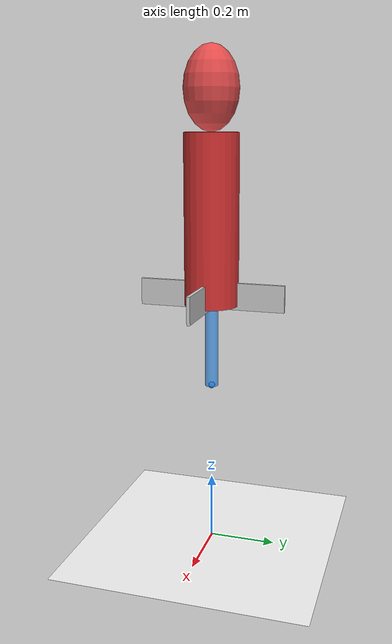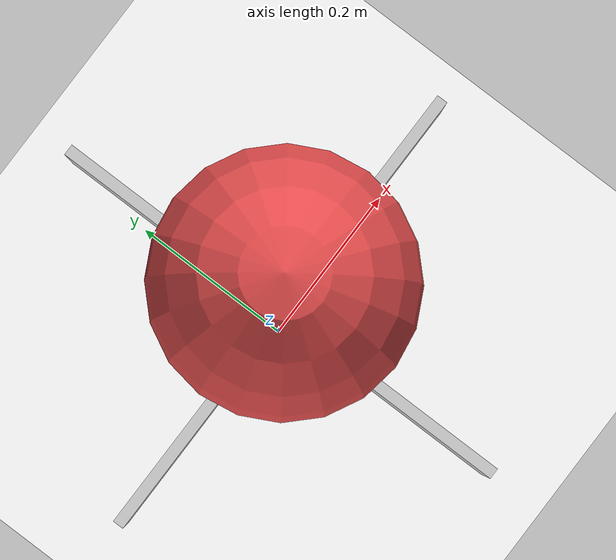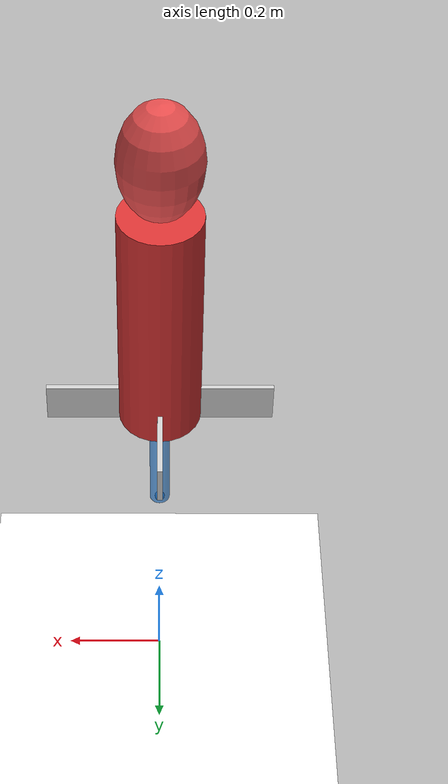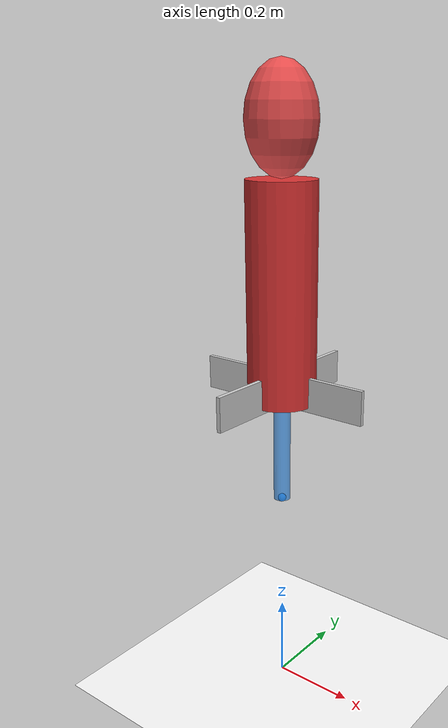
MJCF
<mujoco model="rocket-thrust-plume">
  <compiler angle="degree" coordinate="local"/>
  <option timestep="0.01" gravity="0 0 -9.81" integrator="RK4"/>

  <visual>
    <quality shadowsize="2048"/>
    <headlight diffuse="0.6 0.6 0.6" ambient="0.3 0.3 0.3" specular="0.1 0.1 0.1"/>
    <map znear="0.001" zfar="50"/>
  </visual>

  <default>
    <geom contype="1" conaffinity="1" friction="0.8 0.1 0.01" rgba="0.8 0.8 0.8 1"/>
    <site rgba="0.2 0.6 1.0 0.9"/>
    <joint damping="0.02" limited="true" range="-90 90"/>
    <motor ctrllimited="true" ctrlrange="-2 2"/>
  </default>

  <asset>
    <texture name="grid" type="2d" builtin="checker"
             rgb1="0.9 0.9 0.9" rgb2="0.7 0.7 0.7"
             width="600" height="600"/>
    <material name="grid" texture="grid" texrepeat="10 10" reflectance="0.1"/>
  </asset>

  <worldbody>

    <!-- ground -->
    <geom name="ground" type="plane" size="10 10 0.1"
          material="grid" rgba="1 1 1 1"/>

    <!-- rocket body -->
    <body name="ball" pos="0 0 1">
        <freejoint name="ball_free"/>

        <!-- Rocket COM inertial -->
        <inertial pos="0 0 0" mass="100" diaginertia="0.010 0.010 0.003"/>

        <!-- body -->
        <geom name="rocket_fuselage" type="cylinder"
                fromto="0 0 -0.25   0 0 0.25" size="0.08"
                rgba="0.85 0.2 0.2 1"/>

        <geom name="rocket_nose" type="ellipsoid"
                pos="0 0 0.37" size="0.08 0.08 0.12"
                rgba="0.9 0.3 0.3 1"/>

        <!-- fins -->
        <geom name="fin_xp" type="box" pos="0.12 0 -0.22" size="0.10 0.005 0.04"/>
        <geom name="fin_xn" type="box" pos="-0.12 0 -0.22" size="0.10 0.005 0.04"/>
        <geom name="fin_yp" type="box" pos="0 0.12 -0.22" size="0.005 0.10 0.04"/>
        <geom name="fin_yn" type="box" pos="0 -0.12 -0.22" size="0.005 0.10 0.04"/>

        <!-- thruster mount -->
        <body name="thruster_mount" pos="0 0 -0.25">
            <inertial pos="0 0 0" mass="20" diaginertia="1e-4 1e-4 1e-4"/>

            <joint name="thruster_yaw" type="hinge" axis="1 0 0"
                   range="-30 30" damping="0.0"/>

            <!-- pitch gimbal -->
            <body name="thruster_gimbal" pos="0 0 0">
                <inertial pos="0 0 0" mass="30" diaginertia="2e-4 2e-4 2e-4"/>

                <joint name="thruster_pitch" type="hinge" axis="0 1 0"
                       range="-30 30" damping="0.0"/>

                <!-- nozzle -->
                <geom name="thruster_geom" type="cylinder"
                      fromto="0 0 0   0 0 -0.25" size="0.02"
                      rgba="0.2 0.6 1.0 0.7"/>

                <!-- thrust site -->
                <site name="thrust_site" pos="0 0 -0.25" size="0.01"
                      type="sphere" rgba="0.2 0.6 1.0 0.9"/>

                <!-- plume visual (stretch capsule) -->
                <geom name="plume_geom" type="capsule"
                      pos="0 0 -0.25"
                      size="0.03 0.005"
                      quat="1 0 0 0"
                      rgba="0.2 0.6 1 0.4"
                      contype="0" conaffinity="0" group="5"/>

            </body>
        </body>
    </body>

  </worldbody>

  <actuator>
    <motor name="yaw_motor" joint="thruster_yaw" gear="1"
           ctrllimited="true" ctrlrange="-50 50"/>

    <motor name="pitch_motor" joint="thruster_pitch" gear="1"
           ctrllimited="true" ctrlrange="-50 50"/>

    <general name="thrust" site="thrust_site"
             gear="0 0 1 0 0 0"
             biastype="none"
             ctrllimited="true" ctrlrange="0 2200"/>
  </actuator>

</mujoco>
